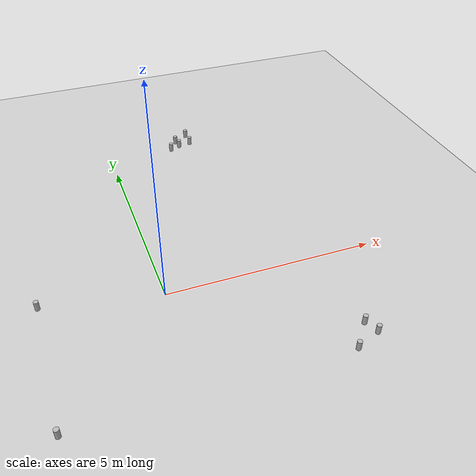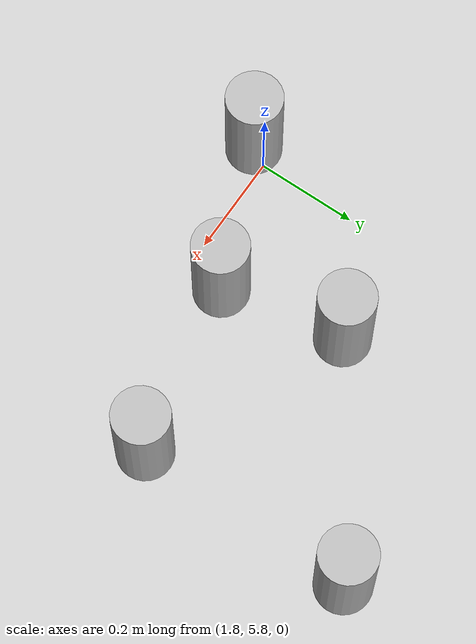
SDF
<sdf version="1.7">
 <world name="default">
  <light name="sun" type="directional">
   <pose>0 0 10 0 -0 0</pose>
   <diffuse>0.8 0.8 0.8 1</diffuse>
   <specular>0.2 0.2 0.2 1</specular>
   <attenuation>
    <range>1000</range>
    <constant>0.9</constant>
    <linear>0.01</linear>
    <quadratic>0.001</quadratic>
   </attenuation>
   <direction>-0.5 0.1 -0.9</direction>
   <spot><inner_angle>0</inner_angle><outer_angle>0</outer_angle><falloff>0</falloff></spot>
  </light>
  <model name="ground_plane">
   <static>1</static>
   <link name="link">
    <collision name="collision">
     <geometry><plane><normal>0 0 1</normal><size>100 100</size></plane></geometry>
     <surface><friction><ode><mu>100</mu><mu2>50</mu2></ode></friction></surface>
    </collision>
    <visual name="visual">
     <cast_shadows>0</cast_shadows>
     <geometry><plane><normal>0 0 1</normal><size>100 100</size></plane></geometry>
     <material>
      <script><uri>file://media/materials/scripts/gazebo.material</uri><name>Gazebo/Grey</name></script>
     </material>
    </visual>
   </link>
  </model>
  <gravity>0 0 -9.8</gravity>
  <magnetic_field>6e-06 2.3e-05 -4.2e-05</magnetic_field>
  <atmosphere type="adiabatic"/>
  <physics type="ode">
   <max_step_size>0.001</max_step_size>
   <real_time_factor>1</real_time_factor>
   <real_time_update_rate>1000</real_time_update_rate>
  </physics>
  <scene><ambient>0.4 0.4 0.4 1</ambient><background>0.7 0.7 0.7 1</background><shadows>1</shadows></scene>
  <audio><device>default</device></audio>
  <spherical_coordinates>
   <surface_model>EARTH_WGS84</surface_model>
   <latitude_deg>0</latitude_deg>
   <longitude_deg>0</longitude_deg>
   <elevation>0</elevation>
   <heading_deg>0</heading_deg>
  </spherical_coordinates>
  <model name="beer">
   <link name="link">
    <pose>0 0 0.115 0 -0 0</pose>
    <inertial>
     <mass>0.39</mass>
     <inertia><ixx>0.00058</ixx><ixy>0</ixy><ixz>0</ixz><iyy>0.00058</iyy><iyz>0</iyz><izz>0.00019</izz></inertia>
    </inertial>
    <collision name="collision">
     <geometry><cylinder><radius>0.055</radius><length>0.23</length></cylinder></geometry>
    </collision>
    <visual name="visual">
     <geometry><cylinder><radius>0.055</radius><length>0.23</length></cylinder></geometry>
     <material>
      <script>
       <uri>model://beer/materials/scripts</uri>
       <uri>model://beer/materials/textures</uri>
       <name>Beer/Diffuse</name>
      </script>
     </material>
    </visual>
   </link>
   <pose>3.66736 -2.23097 -7e-06 -1e-06 -0 -2.4e-05</pose>
  </model>
  <model name="beer_0">
   <link name="link">
    <pose>0 0 0.115 0 -0 0</pose>
    <inertial>
     <mass>0.39</mass>
     <inertia><ixx>0.00058</ixx><ixy>0</ixy><ixz>0</ixz><iyy>0.00058</iyy><iyz>0</iyz><izz>0.00019</izz></inertia>
    </inertial>
    <collision name="collision">
     <geometry><cylinder><radius>0.055</radius><length>0.23</length></cylinder></geometry>
    </collision>
    <visual name="visual">
     <geometry><cylinder><radius>0.055</radius><length>0.23</length></cylinder></geometry>
     <material>
      <script>
       <uri>model://beer/materials/scripts</uri>
       <uri>model://beer/materials/textures</uri>
       <name>Beer/Diffuse</name>
      </script>
     </material>
    </visual>
   </link>
   <pose>3.79633 -2.55608 -7e-06 0 0 -2.3e-05</pose>
  </model>
  <model name="beer_1">
   <link name="link">
    <pose>0 0 0.115 0 -0 0</pose>
    <inertial>
     <mass>0.39</mass>
     <inertia><ixx>0.00058</ixx><ixy>0</ixy><ixz>0</ixz><iyy>0.00058</iyy><iyz>0</iyz><izz>0.00019</izz></inertia>
    </inertial>
    <collision name="collision">
     <geometry><cylinder><radius>0.055</radius><length>0.23</length></cylinder></geometry>
    </collision>
    <visual name="visual">
     <geometry><cylinder><radius>0.055</radius><length>0.23</length></cylinder></geometry>
     <material>
      <script>
       <uri>model://beer/materials/scripts</uri>
       <uri>model://beer/materials/textures</uri>
       <name>Beer/Diffuse</name>
      </script>
     </material>
    </visual>
   </link>
   <pose>3.20965 -2.79729 -7e-06 0 0 -2.2e-05</pose>
  </model>
  <model name="beer_2">
   <link name="link">
    <pose>0 0 0.115 0 -0 0</pose>
    <inertial>
     <mass>0.39</mass>
     <inertia><ixx>0.00058</ixx><ixy>0</ixy><ixz>0</ixz><iyy>0.00058</iyy><iyz>0</iyz><izz>0.00019</izz></inertia>
    </inertial>
    <collision name="collision">
     <geometry><cylinder><radius>0.055</radius><length>0.23</length></cylinder></geometry>
    </collision>
    <visual name="visual">
     <geometry><cylinder><radius>0.055</radius><length>0.23</length></cylinder></geometry>
     <material>
      <script>
       <uri>model://beer/materials/scripts</uri>
       <uri>model://beer/materials/textures</uri>
       <name>Beer/Diffuse</name>
      </script>
     </material>
    </visual>
   </link>
   <pose>2.39954 6.3824 -7e-06 -1e-06 0 -3e-06</pose>
  </model>
  <model name="beer_3">
   <link name="link">
    <pose>0 0 0.115 0 -0 0</pose>
    <inertial>
     <mass>0.39</mass>
     <inertia><ixx>0.00058</ixx><ixy>0</ixy><ixz>0</ixz><iyy>0.00058</iyy><iyz>0</iyz><izz>0.00019</izz></inertia>
    </inertial>
    <collision name="collision">
     <geometry><cylinder><radius>0.055</radius><length>0.23</length></cylinder></geometry>
    </collision>
    <visual name="visual">
     <geometry><cylinder><radius>0.055</radius><length>0.23</length></cylinder></geometry>
     <material>
      <script>
       <uri>model://beer/materials/scripts</uri>
       <uri>model://beer/materials/textures</uri>
       <name>Beer/Diffuse</name>
      </script>
     </material>
    </visual>
   </link>
   <pose>2.39788 5.94466 -7e-06 -1e-06 0 -3e-06</pose>
  </model>
  <model name="beer_4">
   <link name="link">
    <pose>0 0 0.115 0 -0 0</pose>
    <inertial>
     <mass>0.39</mass>
     <inertia><ixx>0.00058</ixx><ixy>0</ixy><ixz>0</ixz><iyy>0.00058</iyy><iyz>0</iyz><izz>0.00019</izz></inertia>
    </inertial>
    <collision name="collision">
     <geometry><cylinder><radius>0.055</radius><length>0.23</length></cylinder></geometry>
    </collision>
    <visual name="visual">
     <geometry><cylinder><radius>0.055</radius><length>0.23</length></cylinder></geometry>
     <material>
      <script>
       <uri>model://beer/materials/scripts</uri>
       <uri>model://beer/materials/textures</uri>
       <name>Beer/Diffuse</name>
      </script>
     </material>
    </visual>
   </link>
   <pose>2.00905 6.12133 -2e-06 1e-06 -0 -3e-06</pose>
  </model>
  <model name="beer_5">
   <link name="link">
    <pose>0 0 0.115 0 -0 0</pose>
    <inertial>
     <mass>0.39</mass>
     <inertia><ixx>0.00058</ixx><ixy>0</ixy><ixz>0</ixz><iyy>0.00058</iyy><iyz>0</iyz><izz>0.00019</izz></inertia>
    </inertial>
    <collision name="collision">
     <geometry><cylinder><radius>0.055</radius><length>0.23</length></cylinder></geometry>
    </collision>
    <visual name="visual">
     <geometry><cylinder><radius>0.055</radius><length>0.23</length></cylinder></geometry>
     <material>
      <script>
       <uri>model://beer/materials/scripts</uri>
       <uri>model://beer/materials/textures</uri>
       <name>Beer/Diffuse</name>
      </script>
     </material>
    </visual>
   </link>
   <pose>2.05683 5.87851 -7e-06 -1e-06 0 -3e-06</pose>
  </model>
  <model name="beer_6">
   <link name="link">
    <pose>0 0 0.115 0 -0 0</pose>
    <inertial>
     <mass>0.39</mass>
     <inertia><ixx>0.00058</ixx><ixy>0</ixy><ixz>0</ixz><iyy>0.00058</iyy><iyz>0</iyz><izz>0.00019</izz></inertia>
    </inertial>
    <collision name="collision">
     <geometry><cylinder><radius>0.055</radius><length>0.23</length></cylinder></geometry>
    </collision>
    <visual name="visual">
     <geometry><cylinder><radius>0.055</radius><length>0.23</length></cylinder></geometry>
     <material>
      <script>
       <uri>model://beer/materials/scripts</uri>
       <uri>model://beer/materials/textures</uri>
       <name>Beer/Diffuse</name>
      </script>
     </material>
    </visual>
   </link>
   <pose>1.78061 5.76383 -7e-06 -1e-06 0 -3e-06</pose>
  </model>
  <model name="beer_7">
   <link name="link">
    <pose>0 0 0.115 0 -0 0</pose>
    <inertial>
     <mass>0.39</mass>
     <inertia><ixx>0.00058</ixx><ixy>0</ixy><ixz>0</ixz><iyy>0.00058</iyy><iyz>0</iyz><izz>0.00019</izz></inertia>
    </inertial>
    <collision name="collision">
     <geometry><cylinder><radius>0.055</radius><length>0.23</length></cylinder></geometry>
    </collision>
    <visual name="visual">
     <geometry><cylinder><radius>0.055</radius><length>0.23</length></cylinder></geometry>
     <material>
      <script>
       <uri>model://beer/materials/scripts</uri>
       <uri>model://beer/materials/textures</uri>
       <name>Beer/Diffuse</name>
      </script>
     </material>
    </visual>
   </link>
   <pose>-2.66395 0.517614 -2e-06 1e-06 0 -2e-06</pose>
  </model>
  <model name="beer_8">
   <link name="link">
    <pose>0 0 0.115 0 -0 0</pose>
    <inertial>
     <mass>0.39</mass>
     <inertia><ixx>0.00058</ixx><ixy>0</ixy><ixz>0</ixz><iyy>0.00058</iyy><iyz>0</iyz><izz>0.00019</izz></inertia>
    </inertial>
    <collision name="collision">
     <geometry><cylinder><radius>0.055</radius><length>0.23</length></cylinder></geometry>
    </collision>
    <visual name="visual">
     <geometry><cylinder><radius>0.055</radius><length>0.23</length></cylinder></geometry>
     <material>
      <script>
       <uri>model://beer/materials/scripts</uri>
       <uri>model://beer/materials/textures</uri>
       <name>Beer/Diffuse</name>
      </script>
     </material>
    </visual>
   </link>
   <pose>-2.67629 -2.72529 -8e-06 -1e-06 -0 -1e-06</pose>
  </model>
 </world>
</sdf>
